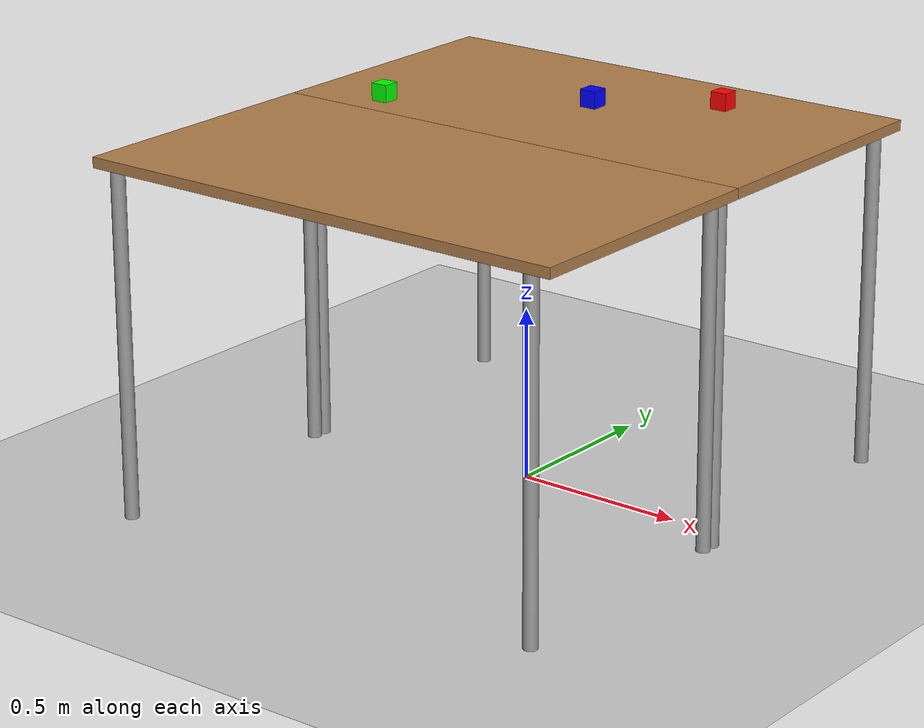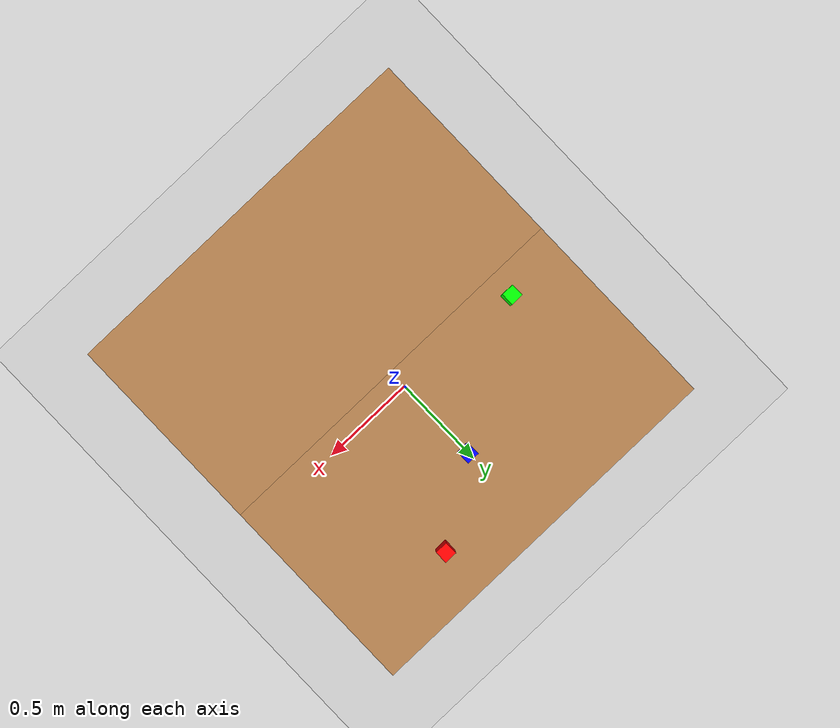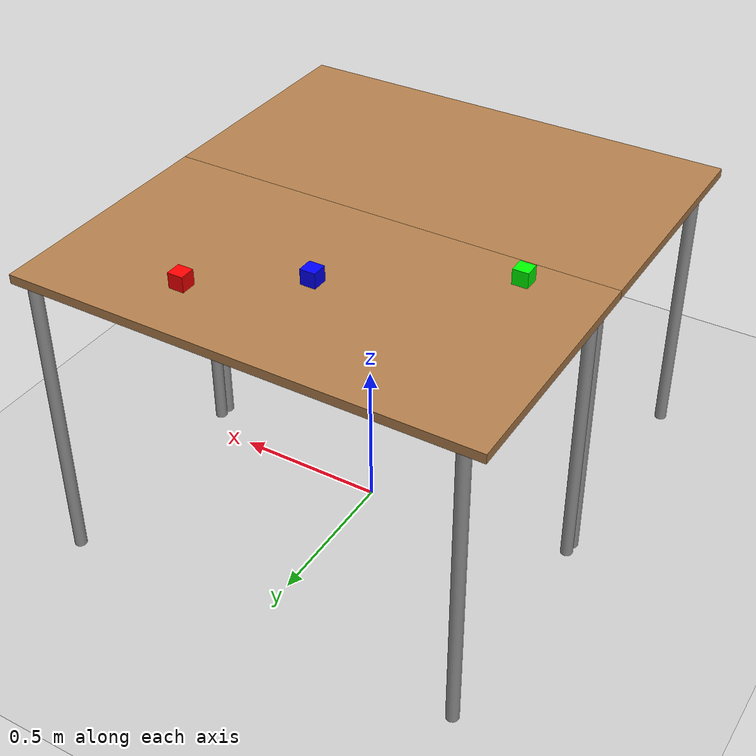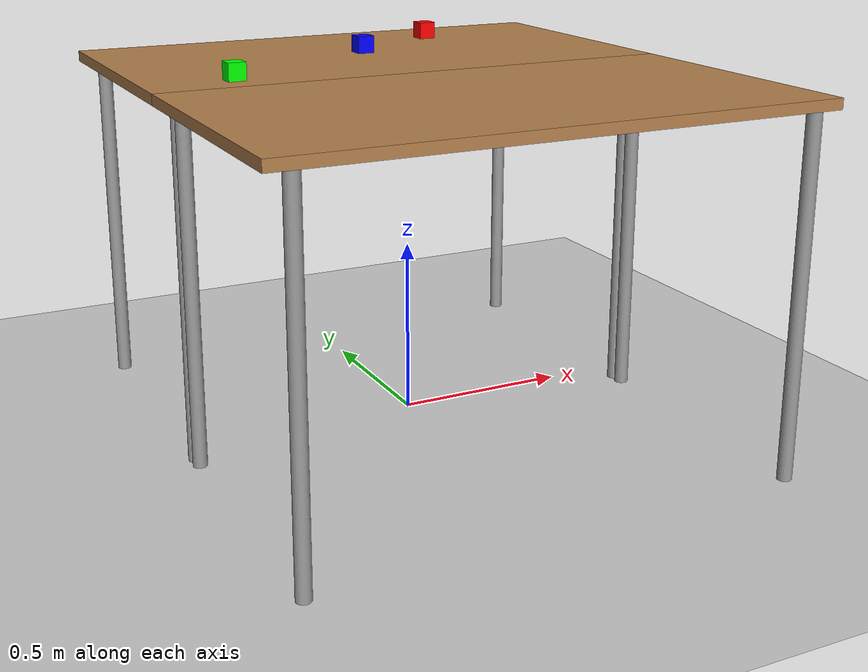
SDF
<?xml version="1.0" ?>
<sdf version="1.6">
  <world name="default">

    <include>
      <uri>model://ground_plane</uri>
    </include>

    <include>
      <uri>model://sun</uri>
    </include>

    <!-- Mesa debajo del UR5 -->
    <include>
      <uri>model://table</uri>
      <name>table1</name>
      <pose>0 0.30 0 0 0 0</pose>
    </include>

    <!-- Mesa al lado (1 m a la derecha) -->
    <include>
      <uri>model://table</uri>
      <name>table2</name>
      <pose>0 -0.5 0 0 0 0</pose>
    </include>

    <!-- Cubitos sobre la mesa debajo del UR5 -->
    <model name="cube1">
      <static>true</static>
      <link name="link">
        <pose>0.30 0.50 1.04 0 0 0</pose> <!-- 1.015 m + 0.025 m (cubo mitad) -->
        <visual name="visual">
          <geometry>
            <box>
              <size>0.05 0.05 0.05</size>
            </box>
          </geometry>
          <material>
            <ambient>1 0 0 1</ambient> <!-- rojo -->
          </material>
        </visual>
        <collision name="collision">
          <geometry>
            <box>
              <size>0.05 0.05 0.05</size>
            </box>
          </geometry>
        </collision>
      </link>
    </model>

    <model name="cube2">
      <static>true</static>
      <link name="link">
        <pose>-0.50 0 1.04 0 0 0</pose>
        <visual name="visual">
          <geometry>
            <box>
              <size>0.05 0.05 0.05</size>
            </box>
          </geometry>
          <material>
            <ambient>0 1 0 1</ambient> <!-- verde -->
          </material>
        </visual>
        <collision name="collision">
          <geometry>
            <box>
              <size>0.05 0.05 0.05</size>
            </box>
          </geometry>
        </collision>
      </link>
    </model>

    <model name="cube3">
      <static>true</static>
      <link name="link">
        <pose>0 0.3 1.04 0 0 0</pose>
        <visual name="visual">
          <geometry>
            <box>
              <size>0.05 0.05 0.05</size>
            </box>
          </geometry>
          <material>
            <ambient>0 0 1 1</ambient> <!-- azul -->
          </material>
        </visual>
        <collision name="collision">
          <geometry>
            <box>
              <size>0.05 0.05 0.05</size>
            </box>
          </geometry>
        </collision>
      </link>
    </model>

  </world>
</sdf>

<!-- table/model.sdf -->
<sdf version="1.5">
  <model name="table">
    <static>true</static>
    <link name="link">
      <collision name="surface">
        <pose>0 0 1.0 0 0 0</pose>
        <geometry>
          <box>
            <size>1.5 0.8 0.03</size>
          </box>
        </geometry>
        <surface>
          <friction>
            <ode>
              <mu>0.6</mu>
              <mu2>0.6</mu2>
            </ode>
          </friction>
        </surface>
      </collision>
      <visual name="visual1">
        <pose>0 0 1.0 0 0 0</pose>
        <geometry>
          <box>
            <size>1.5 0.8 0.03</size>
          </box>
        </geometry>
        <material>
          <script>
            <uri>model://media/materials/scripts/gazebo.material</uri>
            <name>Gazebo/Wood</name>
          </script>
        </material>
      </visual>
      <collision name="front_left_leg">
        <pose>0.68 0.38 0.5 0 0 0</pose>
        <geometry>
          <cylinder>
            <radius>0.02</radius>
            <length>1.0</length>
          </cylinder>
        </geometry>
      </collision>
      <visual name="front_left_leg">
        <pose>0.68 0.38 0.5 0 0 0</pose>
        <geometry>
          <cylinder>
            <radius>0.02</radius>
            <length>1.0</length>
          </cylinder>
        </geometry>
        <material>
          <script>
            <uri>model://media/materials/scripts/gazebo.material</uri>
            <name>Gazebo/Grey</name>
          </script>
        </material>
      </visual>
      <collision name="front_right_leg">
        <pose>0.68 -0.38 0.5 0 0 0</pose>
        <geometry>
          <cylinder>
            <radius>0.02</radius>
            <length>1.0</length>
          </cylinder>
        </geometry>
      </collision>
      <visual name="front_right_leg">
        <pose>0.68 -0.38 0.5 0 0 0</pose>
        <geometry>
          <cylinder>
            <radius>0.02</radius>
            <length>1.0</length>
          </cylinder>
        </geometry>
        <material>
          <script>
            <uri>model://media/materials/scripts/gazebo.material</uri>
            <name>Gazebo/Grey</name>
          </script>
        </material>
      </visual>
      <collision name="back_right_leg">
        <pose>-0.68 -0.38 0.5 0 0 0</pose>
        <geometry>
          <cylinder>
            <radius>0.02</radius>
            <length>1.0</length>
          </cylinder>
        </geometry>
      </collision>
      <visual name="back_right_leg">
        <pose>-0.68 -0.38 0.5 0 0 0</pose>
        <geometry>
          <cylinder>
            <radius>0.02</radius>
            <length>1.0</length>
          </cylinder>
        </geometry>
        <material>
          <script>
            <uri>model://media/materials/scripts/gazebo.material</uri>
            <name>Gazebo/Grey</name>
          </script>
        </material>
      </visual>
      <collision name="back_left_leg">
        <pose>-0.68 0.38 0.5 0 0 0</pose>
        <geometry>
          <cylinder>
            <radius>0.02</radius>
            <length>1.0</length>
          </cylinder>
        </geometry>
      </collision>
      <visual name="back_left_leg">
        <pose>-0.68 0.38 0.5 0 0 0</pose>
        <geometry>
          <cylinder>
            <radius>0.02</radius>
            <length>1.0</length>
          </cylinder>
        </geometry>
        <material>
          <script>
            <uri>model://media/materials/scripts/gazebo.material</uri>
            <name>Gazebo/Grey</name>
          </script>
        </material>
      </visual>
    </link>
  </model>
</sdf>
